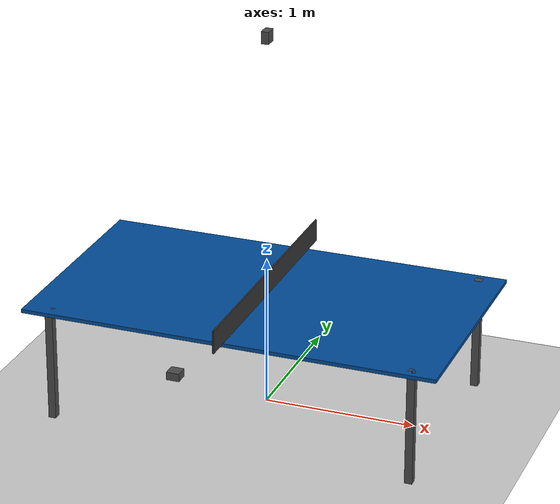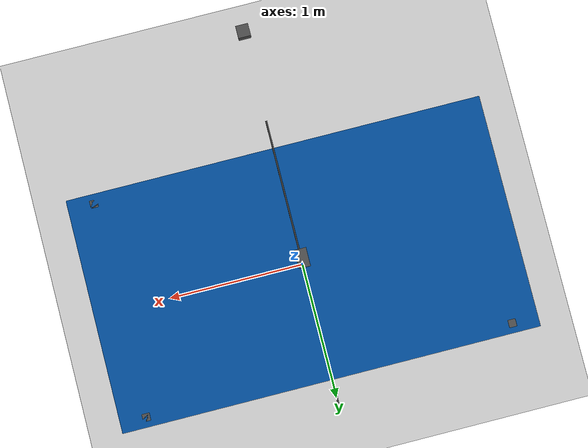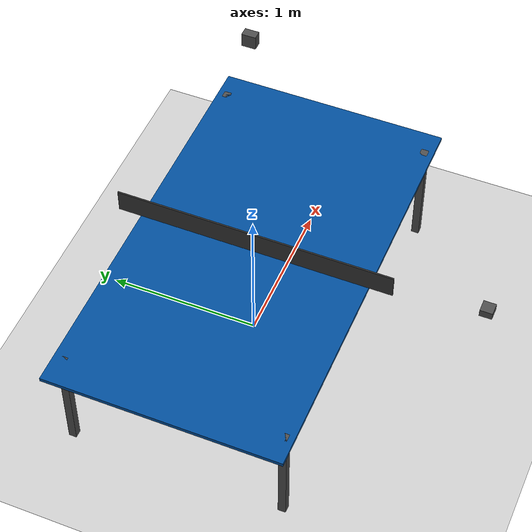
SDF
<?xml version="1.0"?>
<sdf version="1.7">
  <world name="arena">

    <!-- Physics settings -->
    <plugin filename="gz-sim-physics-system" name="gz::sim::systems::Physics">
      <engine>
        <filename>gz-physics-dartsim-plugin</filename>
      </engine>
      <max_step_size>0.001</max_step_size>
      <real_time_factor>1.0</real_time_factor>
    </plugin>

    <!-- User commands (for spawning entities) -->
    <plugin filename="gz-sim-user-commands-system" name="gz::sim::systems::UserCommands"/>

    <!-- Scene broadcaster -->
    <plugin filename="gz-sim-scene-broadcaster-system" name="gz::sim::systems::SceneBroadcaster"/>

    <!-- Sensors -->
    <plugin filename="gz-sim-sensors-system" name="gz::sim::systems::Sensors">
      <render_engine>ogre2</render_engine>
    </plugin>

    <!-- Gravity -->
    <gravity>0 0 -9.8</gravity>

    <!-- Atmosphere -->
    <atmosphere type="adiabatic"/>

    <!-- Scene -->
    <scene>
      <ambient>0.4 0.4 0.4 1.0</ambient>
      <background>0.7 0.7 0.7 1.0</background>
      <shadows>true</shadows>
    </scene>

    <!-- Sun -->
    <light type="directional" name="sun">
      <cast_shadows>true</cast_shadows>
      <pose>0 0 10 0 0 0</pose>
      <diffuse>0.8 0.8 0.8 1</diffuse>
      <specular>0.2 0.2 0.2 1</specular>
      <attenuation>
        <range>1000</range>
        <constant>0.9</constant>
        <linear>0.01</linear>
        <quadratic>0.001</quadratic>
      </attenuation>
      <direction>-0.5 0.1 -0.9</direction>
    </light>

    <!-- Ground plane -->
    <model name="ground_plane">
      <static>true</static>
      <link name="link">
        <collision name="collision">
          <geometry>
            <plane>
              <normal>0 0 1</normal>
              <size>20 20</size>
            </plane>
          </geometry>
          <surface>
            <friction>
              <ode>
                <mu>0.8</mu>
                <mu2>0.8</mu2>
              </ode>
            </friction>
            <bounce>
              <restitution_coefficient>0.3</restitution_coefficient>
              <threshold>0.01</threshold>
            </bounce>
          </surface>
        </collision>
        <visual name="visual">
          <geometry>
            <plane>
              <normal>0 0 1</normal>
              <size>20 20</size>
            </plane>
          </geometry>
          <material>
            <ambient>0.8 0.8 0.8 1</ambient>
            <diffuse>0.8 0.8 0.8 1</diffuse>
            <specular>0.1 0.1 0.1 1</specular>
          </material>
        </visual>
      </link>
    </model>

    <!-- Table tennis table embedded directly -->
    <model name="table_tennis_table">
      <static>true</static>
      <pose>0 0 0 0 0 0</pose>

      <!-- Table top -->
      <link name="table_top">
        <pose>0 0 0.7475 0 0 0</pose>
        <collision name="collision">
          <geometry>
            <box>
              <size>2.74 1.525 0.025</size>
            </box>
          </geometry>
          <surface>
            <friction>
              <ode>
                <mu>0.45</mu>
                <mu2>0.45</mu2>
              </ode>
            </friction>
            <bounce>
              <restitution_coefficient>0.75</restitution_coefficient>
            </bounce>
          </surface>
        </collision>
        <visual name="visual">
          <geometry>
            <box>
              <size>2.74 1.525 0.025</size>
            </box>
          </geometry>
          <material>
            <ambient>0.0 0.3 0.6 1.0</ambient>
            <diffuse>0.0 0.3 0.6 1.0</diffuse>
            <specular>0.2 0.2 0.2 1.0</specular>
          </material>
        </visual>
      </link>

      <!-- Net -->
      <link name="net">
        <pose>0 0 0.83625 0 0 0</pose>
        <collision name="collision">
          <geometry>
            <box>
              <size>0.01 1.83 0.1525</size>
            </box>
          </geometry>
          <surface>
            <friction>
              <ode>
                <mu>0.5</mu>
                <mu2>0.5</mu2>
              </ode>
            </friction>
            <bounce>
              <restitution_coefficient>0.6</restitution_coefficient>
              <threshold>0.01</threshold>
            </bounce>
          </surface>
        </collision>
        <visual name="visual">
          <geometry>
            <box>
              <size>0.01 1.83 0.1525</size>
            </box>
          </geometry>
          <material>
            <ambient>0.2 0.2 0.2 1.0</ambient>
            <diffuse>0.2 0.2 0.2 1.0</diffuse>
          </material>
        </visual>
      </link>

      <!-- Table Leg 1 (front left) -->
      <link name="leg1">
        <pose>-1.2 0.7 0.38 0 0 0</pose>
        <collision name="collision">
          <geometry>
            <box>
              <size>0.05 0.05 0.76</size>
            </box>
          </geometry>
        </collision>
        <visual name="visual">
          <geometry>
            <box>
              <size>0.05 0.05 0.76</size>
            </box>
          </geometry>
          <material>
            <ambient>0.3 0.3 0.3 1.0</ambient>
            <diffuse>0.3 0.3 0.3 1.0</diffuse>
            <specular>0.1 0.1 0.1 1.0</specular>
          </material>
        </visual>
      </link>

      <!-- Table Leg 2 (front right) -->
      <link name="leg2">
        <pose>-1.2 -0.7 0.38 0 0 0</pose>
        <collision name="collision">
          <geometry>
            <box>
              <size>0.05 0.05 0.76</size>
            </box>
          </geometry>
        </collision>
        <visual name="visual">
          <geometry>
            <box>
              <size>0.05 0.05 0.76</size>
            </box>
          </geometry>
          <material>
            <ambient>0.3 0.3 0.3 1.0</ambient>
            <diffuse>0.3 0.3 0.3 1.0</diffuse>
            <specular>0.1 0.1 0.1 1.0</specular>
          </material>
        </visual>
      </link>

      <!-- Table Leg 3 (back left) -->
      <link name="leg3">
        <pose>1.2 0.7 0.38 0 0 0</pose>
        <collision name="collision">
          <geometry>
            <box>
              <size>0.05 0.05 0.76</size>
            </box>
          </geometry>
        </collision>
        <visual name="visual">
          <geometry>
            <box>
              <size>0.05 0.05 0.76</size>
            </box>
          </geometry>
          <material>
            <ambient>0.3 0.3 0.3 1.0</ambient>
            <diffuse>0.3 0.3 0.3 1.0</diffuse>
            <specular>0.1 0.1 0.1 1.0</specular>
          </material>
        </visual>
      </link>

      <!-- Table Leg 4 (back right) -->
      <link name="leg4">
        <pose>1.2 -0.7 0.38 0 0 0</pose>
        <collision name="collision">
          <geometry>
            <box>
              <size>0.05 0.05 0.76</size>
            </box>
          </geometry>
        </collision>
        <visual name="visual">
          <geometry>
            <box>
              <size>0.05 0.05 0.76</size>
            </box>
          </geometry>
          <material>
            <ambient>0.3 0.3 0.3 1.0</ambient>
            <diffuse>0.3 0.3 0.3 1.0</diffuse>
            <specular>0.1 0.1 0.1 1.0</specular>
          </material>
        </visual>
      </link>
    </model>

    <!-- Overhead camera embedded directly -->
    <model name="overhead_camera">
      <static>true</static>
      <pose>0 0 2.5 0 1.5708 0</pose>
      <link name="link">
        <!-- Visual representation of camera -->
        <visual name="visual">
          <geometry>
            <box>
              <size>0.08 0.08 0.05</size>
            </box>
          </geometry>
          <material>
            <ambient>0.2 0.2 0.2 1.0</ambient>
            <diffuse>0.3 0.3 0.3 1.0</diffuse>
            <specular>0.5 0.5 0.5 1.0</specular>
          </material>
        </visual>

        <sensor name="overhead_cam" type="rgbd_camera">
          <camera>
            <horizontal_fov>1.51844</horizontal_fov>
            <image>
              <width>640</width>
              <height>480</height>
            </image>
            <clip>
              <near>0.3</near>
              <far>10.0</far>
            </clip>
          </camera>
          <always_on>1</always_on>
          <update_rate>30</update_rate>
          <visualize>true</visualize>
          <topic>/overhead_cam</topic>
        </sensor>
      </link>
    </model>

    <!-- Side camera embedded directly -->
    <model name="side_camera">
      <static>true</static>
      <pose>0 -1.5 0.9 0 0 1.5708</pose>
      <link name="link">
        <!-- Visual representation of camera -->
        <visual name="visual">
          <geometry>
            <box>
              <size>0.08 0.08 0.05</size>
            </box>
          </geometry>
          <material>
            <ambient>0.2 0.2 0.2 1.0</ambient>
            <diffuse>0.3 0.3 0.3 1.0</diffuse>
            <specular>0.5 0.5 0.5 1.0</specular>
          </material>
        </visual>

        <sensor name="side_cam" type="rgbd_camera">
          <camera>
            <horizontal_fov>1.51844</horizontal_fov>
            <image>
              <width>640</width>
              <height>480</height>
            </image>
            <clip>
              <near>0.3</near>
              <far>10.0</far>
            </clip>
          </camera>
          <always_on>1</always_on>
          <update_rate>30</update_rate>
          <visualize>true</visualize>
          <topic>/side_cam</topic>
        </sensor>
      </link>
    </model>

  </world>
</sdf>
